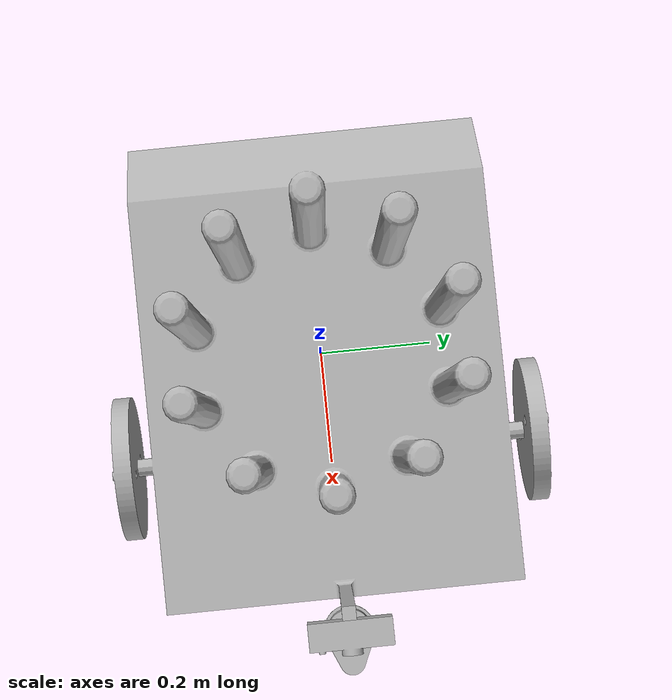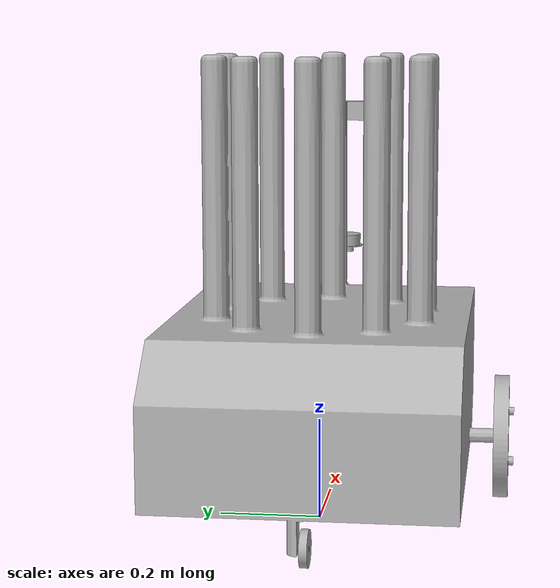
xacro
<?xml version="1.0" ?>
<robot name="uvc2308trial" xmlns:xacro="http://www.ros.org/wiki/xacro">

<xacro:include filename="$(find uvc2308trial_description)/urdf/materials.xacro" />
<xacro:include filename="$(find uvc2308trial_description)/urdf/uvc2308trial.gazebo" />

<link name="base_link">
  <inertial>
    <origin rpy="0 0 0" xyz="0.033782226346891105 2.3715430983439135e-06 0.2804808377593937"/>
    <mass value="50.500150700507"/>
    <inertia ixx="51.398406" ixy="0.00093" ixz="-1.652129" iyy="70.361269" iyz="0.000558" izz="79.459893"/>

  </inertial>
  <visual>
    <origin rpy="0 0 0" xyz="0 0 0"/>
    <geometry>
      <mesh filename="package://uvc2308trial_description/meshes/base_link.stl" scale="0.001 0.001 0.001"/>
    </geometry>
    <material name="silver"/>
  </visual>
  <collision>
    <origin rpy="0 0 0" xyz="0 0 0"/>
    <geometry>
      <mesh filename="package://uvc2308trial_description/meshes/base_link.stl" scale="0.001 0.001 0.001"/>
    </geometry>
  </collision>
</link>

<link name="FR_2">
  <inertial>
    <origin rpy="0 0 0" xyz="2.7454143579380696e-05 0.014933496651531375 3.124396154410847e-05"/>
    <mass value="11.31834330389438"/>
    <inertia ixx="0.045826" ixy="-3e-06" ixz="4.9e-05" iyy="0.090097" iyz="-4e-06" izz="0.045993"/>
  </inertial>
  <visual>
    <origin rpy="0 0 0" xyz="-0.175811 0.37 -0.13208"/>
    <geometry>
      <mesh filename="package://uvc2308trial_description/meshes/FR_2.stl" scale="0.001 0.001 0.001"/>
    </geometry>
    <material name="silver"/>
  </visual>
  <collision>
    <origin rpy="0 0 0" xyz="-0.175811 0.37 -0.13208"/>
    <geometry>
      <mesh filename="package://uvc2308trial_description/meshes/FR_2.stl" scale="0.001 0.001 0.001"/>
    </geometry>
  </collision>
</link>

<link name="castor_1">
  <inertial>
    <origin rpy="0 0 0" xyz="-3.8385701317533716e-07 0.0075000000000000604 4.653077914987258e-07"/>
    <mass value="0.44390704195223746"/>
    <inertia ixx="0.000147" ixy="0.0" ixz="-0.0" iyy="0.000277" iyz="-0.0" izz="0.000147"/>
  </inertial>
  <visual>
    <origin rpy="0 0 0" xyz="0.324189 0.02 -0.04208"/>
    <geometry>
      <mesh filename="package://uvc2308trial_description/meshes/castor_1.stl" scale="0.001 0.001 0.001"/>
    </geometry>
    <material name="silver"/>
  </visual>
  <collision>
    <origin rpy="0 0 0" xyz="0.324189 0.02 -0.04208"/>
    <geometry>
      <mesh filename="package://uvc2308trial_description/meshes/castor_1.stl" scale="0.001 0.001 0.001"/>
    </geometry>
  </collision>
</link>

<link name="FL_1">
  <inertial>
    <origin rpy="0 0 0" xyz="2.7454143579380696e-05 -0.014933496651532152 -3.031334596115265e-05"/>
    <mass value="11.31834330389438"/>
    <inertia ixx="0.045826" ixy="3e-06" ixz="-4.9e-05" iyy="0.090097" iyz="-4e-06" izz="0.045993"/>
  </inertial>
  <visual>
    <origin rpy="0 0 0" xyz="-0.175811 -0.37 -0.13208"/>
    <geometry>
      <mesh filename="package://uvc2308trial_description/meshes/FL_1.stl" scale="0.001 0.001 0.001"/>
    </geometry>
    <material name="silver"/>
  </visual>
  <collision>
    <origin rpy="0 0 0" xyz="-0.175811 -0.37 -0.13208"/>
    <geometry>
      <mesh filename="package://uvc2308trial_description/meshes/FL_1.stl" scale="0.001 0.001 0.001"/>
    </geometry>
  </collision>
</link>

<link name="camera_1">
  <inertial>
    <origin rpy="0 0 0" xyz="0.020929873478155725 -8.317922429711189e-05 4.65476775013407e-07"/>
    <mass value="1.5657710696890468"/>
    <inertia ixx="0.002021" ixy="3e-06" ixz="-0.0" iyy="0.00044" iyz="-0.0" izz="0.002054"/>
  </inertial>
  <visual>
    <origin rpy="0 0 0" xyz="-0.415811 0.0 -0.78208"/>
    <geometry>
      <mesh filename="package://uvc2308trial_description/meshes/camera_1.stl" scale="0.001 0.001 0.001"/>
    </geometry>
    <material name="silver"/>
  </visual>
  <collision>
    <origin rpy="0 0 0" xyz="-0.415811 0.0 -0.78208"/>
    <geometry>
      <mesh filename="package://uvc2308trial_description/meshes/camera_1.stl" scale="0.001 0.001 0.001"/>
    </geometry>
  </collision>
</link>

<link name="lidar_1">
  <inertial>
    <origin rpy="0 0 0" xyz="0.006625086613721964 -1.8584839356224895e-06 0.009232599987091417"/>
    <mass value="0.9966894548079703"/>
    <inertia ixx="0.00039" ixy="0.0" ixz="0.000115" iyy="0.000673" iyz="-0.0" izz="0.000849"/>
  </inertial>
  <visual>
    <origin rpy="0 0 0" xyz="-0.460811 8e-06 -0.48308"/>
    <geometry>
      <mesh filename="package://uvc2308trial_description/meshes/lidar_1.stl" scale="0.001 0.001 0.001"/>
    </geometry>
    <material name="silver"/>
  </visual>
  <collision>
    <origin rpy="0 0 0" xyz="-0.460811 8e-06 -0.48308"/>
    <geometry>
      <mesh filename="package://uvc2308trial_description/meshes/lidar_1.stl" scale="0.001 0.001 0.001"/>
    </geometry>
  </collision>
</link>

<joint name="Rrev" type="continuous">
  <origin rpy="0 0 0" xyz="0.175811 -0.37 0.13208"/>
  <parent link="base_link"/>
  <child link="FR_2"/>
  <axis xyz="-0.0 -1.0 0.0"/>
</joint>

<joint name="CastorRev" type="continuous">
  <origin rpy="0 0 0" xyz="-0.324189 -0.02 0.04208"/>
  <parent link="base_link"/>
  <child link="castor_1"/>
  <axis xyz="-0.0 -1.0 0.0"/>
</joint>

<joint name="Lrev" type="continuous">
  <origin rpy="0 0 0" xyz="0.175811 0.37 0.13208"/>
  <parent link="base_link"/>
  <child link="FL_1"/>
  <axis xyz="0.0 1.0 0.0"/>
</joint>

<joint name="Rigid5" type="fixed">
  <origin rpy="0 0 0" xyz="0.415811 0.0 0.78208"/>
  <parent link="base_link"/>
  <child link="camera_1"/>
</joint>

<joint name="Rigid6" type="fixed">
  <origin rpy="0 0 0" xyz="0.460811 -8e-06 0.48308"/>
  <parent link="base_link"/>
  <child link="lidar_1"/>
</joint>

</robot>

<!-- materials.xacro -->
<robot name="uvc2308trial" xmlns:xacro="http://www.ros.org/wiki/xacro" >

<material name="silver">
  <color rgba="0.7 0.7 0.7 1"/>
</material>

</robot>

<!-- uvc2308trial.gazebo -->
<robot name="uvc2308trial" xmlns:xacro="http://www.ros.org/wiki/xacro" >

<xacro:property name="body_color" value="Gazebo/Silver" />
<xacro:property name="link_name" value="camera_1" />
<xacro:property name="camera_name" value="kinect" />

<gazebo>
<plugin filename="libgazebo_ros_diff_drive.so" name="differential_drive_controller">
<legacyMode>false</legacyMode>
<alwaysOn>true</alwaysOn>
<updateRate>10</updateRate>
<leftJoint>Lrev</leftJoint>
<rightJoint>Rrev</rightJoint>
<wheelSeparation>0.64</wheelSeparation>
<wheelDiameter>0.3</wheelDiameter>
<torque>0.2</torque>
<commandTopic>offset_cmd_vel</commandTopic>
<odometryTopic>odom</odometryTopic>
<odometryFrame>odom</odometryFrame>
<robotBaseFrame>base_link</robotBaseFrame>
<publishWheelTF>true</publishWheelTF>
<publishWheelJointState>true</publishWheelJointState>
</plugin>
</gazebo>

  <gazebo reference="lidar_1">
    <sensor type="gpu_ray" name="Lidar">
      <pose>0 0 0 0 0 0</pose>
      <visualize>true</visualize>
      <update_rate>40</update_rate>
      <ray>
        <scan>
          <horizontal>
            <samples>720</samples>
            <resolution>1</resolution>
            <min_angle>-1.570796</min_angle>
            <max_angle>1.570796</max_angle>
          </horizontal>
        </scan>
        <range>
          <min>0.10</min>
          <max>30.0</max>
          <resolution>0.01</resolution>
        </range>
        <noise>
          <type>gaussian</type>
          <mean>0.0</mean>
          <stddev>0.01</stddev>
        </noise>
      </ray>
      <plugin name="gazebo_ros_head_hokuyo_controller" filename="libgazebo_ros_gpu_laser.so">
        <topicName>/laser_scan</topicName>
        <frameName>lidar_1</frameName>
      </plugin>
    </sensor>
  </gazebo>

<gazebo reference="${link_name}">
  <sensor name="${link_name}_camera" type="depth">
    <update_rate>20</update_rate>
    <camera>
      <horizontal_fov>1.047198</horizontal_fov>
      <image>
        <width>640</width>
        <height>480</height>
        <format>R8G8B8</format>
      </image>
      <clip>
        <near>0.05</near>
        <far>3</far>
      </clip>
    </camera>
    <plugin name="${link_name}_controller" filename="libgazebo_ros_openni_kinect.so">
      <baseline>0.2</baseline>
      <alwaysOn>true</alwaysOn>
      <updateRate>1.0</updateRate>
      <cameraName>${camera_name}_ir</cameraName>
      <imageTopicName>/${camera_name}/color/image_raw</imageTopicName>
      <cameraInfoTopicName>/${camera_name}/color/camera_info</cameraInfoTopicName>
      <depthImageTopicName>/${camera_name}/depth/image_raw</depthImageTopicName>
      <depthImageInfoTopicName>/${camera_name}/depth/camera_info</depthImageInfoTopicName>
      <pointCloudTopicName>/${camera_name}/depth/points</pointCloudTopicName>
      <frameName>camera_1</frameName>
      <pointCloudCutoff>0.5</pointCloudCutoff>
      <pointCloudCutoffMax>3.0</pointCloudCutoffMax>
      <distortionK1>0.00000001</distortionK1>
      <distortionK2>0.00000001</distortionK2>
      <distortionK3>0.00000001</distortionK3>
      <distortionT1>0.00000001</distortionT1>
      <distortionT2>0.00000001</distortionT2>
      <CxPrime>0</CxPrime>
      <Cx>0</Cx>
      <Cy>0</Cy>
      <focalLength>0</focalLength>
      <hackBaseline>0</hackBaseline>
    </plugin>
  </sensor>
</gazebo>

<gazebo reference="base_link">
  <material>${body_color}</material>
  <mu1>0.2</mu1>
  <mu2>0.2</mu2>
  <selfCollide>true</selfCollide>
  <gravity>true</gravity>
</gazebo>

<gazebo reference="FR_2">
  <material>${body_color}</material>
  <mu1>0.2</mu1>
  <mu2>0.2</mu2>
  <selfCollide>true</selfCollide>
</gazebo>

<gazebo reference="castor_1">
  <material>${body_color}</material>
  <mu1>0.2</mu1>
  <mu2>0.2</mu2>
  <selfCollide>true</selfCollide>
</gazebo>

<gazebo reference="FL_1">
  <material>${body_color}</material>
  <mu1>0.2</mu1>
  <mu2>0.2</mu2>
  <selfCollide>true</selfCollide>
</gazebo>

<gazebo reference="camera_1">
  <material>${body_color}</material>
  <mu1>0.2</mu1>
  <mu2>0.2</mu2>
  <selfCollide>true</selfCollide>
</gazebo>

<gazebo reference="lidar_1">
  <material>${body_color}</material>
  <mu1>0.2</mu1>
  <mu2>0.2</mu2>
  <selfCollide>true</selfCollide>
</gazebo>

</robot>
